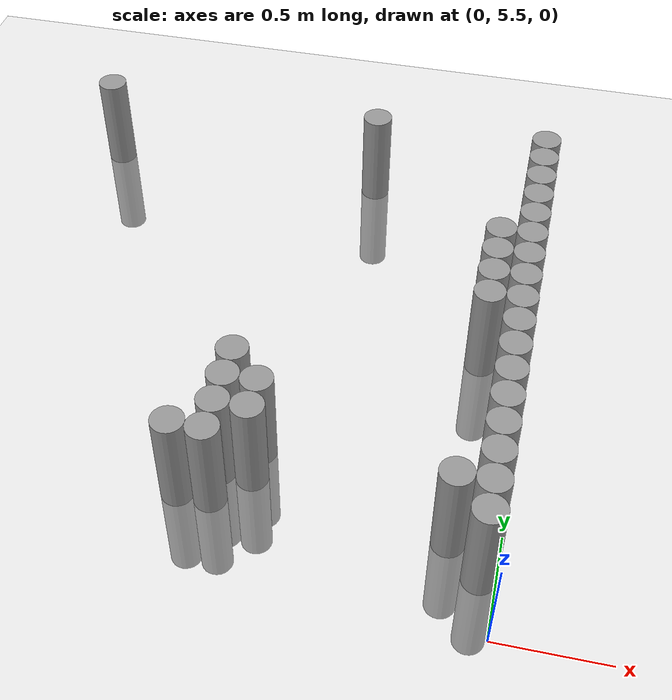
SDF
<sdf version="1.6">
 <world name="default">
  <model name="ground_plane">
   <static>1</static>
   <static>1</static>
   <link name="link">
    <collision name="collision">
     <geometry><plane><normal>0 0 1</normal><size>100 100</size></plane></geometry>
     <surface><friction><ode><mu>100</mu><mu2>50</mu2></ode></friction></surface>
    </collision>
    <visual name="visual">
     <cast_shadows>0</cast_shadows>
     <geometry><plane><normal>0 0 1</normal><size>100 100</size></plane></geometry>
     <material>
      <script><uri>file://media/materials/scripts/gazebo.material</uri><name>Gazebo/Grey</name></script>
     </material>
    </visual>
   </link>
  </model>
  <model name="unit_cylinder_168">
   <static>1</static>
   <pose>-2.475000 8.175000 0.000000 0.000000 0.000000 0.000000</pose>
   <link name="link">
    <inertial>
     <mass>1</mass>
     <inertia><ixx>0.145833</ixx><ixy>0</ixy><ixz>0</ixz><iyy>0.145833</iyy><iyz>0</iyz><izz>0.125</izz></inertia>
    </inertial>
    <collision name="collision">
     <geometry><cylinder><radius>0.075000</radius><length>1</length></cylinder></geometry>
    </collision>
    <visual name="visual">
     <geometry><cylinder><radius>0.075000</radius><length>1</length></cylinder></geometry>
     <material>
      <script><name>Gazebo/Grey</name><uri>file://media/materials/scripts/gazebo.material</uri></script>
     </material>
    </visual>
   </link>
  </model>
  <model name="unit_cylinder_187">
   <static>1</static>
   <pose>-1.425000 5.925000 0.000000 0.000000 0.000000 0.000000</pose>
   <link name="link">
    <inertial>
     <mass>1</mass>
     <inertia><ixx>0.145833</ixx><ixy>0</ixy><ixz>0</ixz><iyy>0.145833</iyy><iyz>0</iyz><izz>0.125</izz></inertia>
    </inertial>
    <collision name="collision">
     <geometry><cylinder><radius>0.075000</radius><length>1</length></cylinder></geometry>
    </collision>
    <visual name="visual">
     <geometry><cylinder><radius>0.075000</radius><length>1</length></cylinder></geometry>
     <material>
      <script><name>Gazebo/Grey</name><uri>file://media/materials/scripts/gazebo.material</uri></script>
     </material>
    </visual>
   </link>
  </model>
  <model name="unit_cylinder_188">
   <static>1</static>
   <pose>-1.275000 5.925000 0.000000 0.000000 0.000000 0.000000</pose>
   <link name="link">
    <inertial>
     <mass>1</mass>
     <inertia><ixx>0.145833</ixx><ixy>0</ixy><ixz>0</ixz><iyy>0.145833</iyy><iyz>0</iyz><izz>0.125</izz></inertia>
    </inertial>
    <collision name="collision">
     <geometry><cylinder><radius>0.075000</radius><length>1</length></cylinder></geometry>
    </collision>
    <visual name="visual">
     <geometry><cylinder><radius>0.075000</radius><length>1</length></cylinder></geometry>
     <material>
      <script><name>Gazebo/Grey</name><uri>file://media/materials/scripts/gazebo.material</uri></script>
     </material>
    </visual>
   </link>
  </model>
  <model name="unit_cylinder_189">
   <static>1</static>
   <pose>-1.275000 6.075000 0.000000 0.000000 0.000000 0.000000</pose>
   <link name="link">
    <inertial>
     <mass>1</mass>
     <inertia><ixx>0.145833</ixx><ixy>0</ixy><ixz>0</ixz><iyy>0.145833</iyy><iyz>0</iyz><izz>0.125</izz></inertia>
    </inertial>
    <collision name="collision">
     <geometry><cylinder><radius>0.075000</radius><length>1</length></cylinder></geometry>
    </collision>
    <visual name="visual">
     <geometry><cylinder><radius>0.075000</radius><length>1</length></cylinder></geometry>
     <material>
      <script><name>Gazebo/Grey</name><uri>file://media/materials/scripts/gazebo.material</uri></script>
     </material>
    </visual>
   </link>
  </model>
  <model name="unit_cylinder_190">
   <static>1</static>
   <pose>-1.275000 6.225000 0.000000 0.000000 0.000000 0.000000</pose>
   <link name="link">
    <inertial>
     <mass>1</mass>
     <inertia><ixx>0.145833</ixx><ixy>0</ixy><ixz>0</ixz><iyy>0.145833</iyy><iyz>0</iyz><izz>0.125</izz></inertia>
    </inertial>
    <collision name="collision">
     <geometry><cylinder><radius>0.075000</radius><length>1</length></cylinder></geometry>
    </collision>
    <visual name="visual">
     <geometry><cylinder><radius>0.075000</radius><length>1</length></cylinder></geometry>
     <material>
      <script><name>Gazebo/Grey</name><uri>file://media/materials/scripts/gazebo.material</uri></script>
     </material>
    </visual>
   </link>
  </model>
  <model name="unit_cylinder_191">
   <static>1</static>
   <pose>-1.275000 6.375000 0.000000 0.000000 0.000000 0.000000</pose>
   <link name="link">
    <inertial>
     <mass>1</mass>
     <inertia><ixx>0.145833</ixx><ixy>0</ixy><ixz>0</ixz><iyy>0.145833</iyy><iyz>0</iyz><izz>0.125</izz></inertia>
    </inertial>
    <collision name="collision">
     <geometry><cylinder><radius>0.075000</radius><length>1</length></cylinder></geometry>
    </collision>
    <visual name="visual">
     <geometry><cylinder><radius>0.075000</radius><length>1</length></cylinder></geometry>
     <material>
      <script><name>Gazebo/Grey</name><uri>file://media/materials/scripts/gazebo.material</uri></script>
     </material>
    </visual>
   </link>
  </model>
  <model name="unit_cylinder_193">
   <static>1</static>
   <pose>-1.125000 6.075000 0.000000 0.000000 0.000000 0.000000</pose>
   <link name="link">
    <inertial>
     <mass>1</mass>
     <inertia><ixx>0.145833</ixx><ixy>0</ixy><ixz>0</ixz><iyy>0.145833</iyy><iyz>0</iyz><izz>0.125</izz></inertia>
    </inertial>
    <collision name="collision">
     <geometry><cylinder><radius>0.075000</radius><length>1</length></cylinder></geometry>
    </collision>
    <visual name="visual">
     <geometry><cylinder><radius>0.075000</radius><length>1</length></cylinder></geometry>
     <material>
      <script><name>Gazebo/Grey</name><uri>file://media/materials/scripts/gazebo.material</uri></script>
     </material>
    </visual>
   </link>
  </model>
  <model name="unit_cylinder_194">
   <static>1</static>
   <pose>-1.125000 6.225000 0.000000 0.000000 0.000000 0.000000</pose>
   <link name="link">
    <inertial>
     <mass>1</mass>
     <inertia><ixx>0.145833</ixx><ixy>0</ixy><ixz>0</ixz><iyy>0.145833</iyy><iyz>0</iyz><izz>0.125</izz></inertia>
    </inertial>
    <collision name="collision">
     <geometry><cylinder><radius>0.075000</radius><length>1</length></cylinder></geometry>
    </collision>
    <visual name="visual">
     <geometry><cylinder><radius>0.075000</radius><length>1</length></cylinder></geometry>
     <material>
      <script><name>Gazebo/Grey</name><uri>file://media/materials/scripts/gazebo.material</uri></script>
     </material>
    </visual>
   </link>
  </model>
  <model name="unit_cylinder_197">
   <static>1</static>
   <pose>-0.975000 8.175000 0.000000 0.000000 0.000000 0.000000</pose>
   <link name="link">
    <inertial>
     <mass>1</mass>
     <inertia><ixx>0.145833</ixx><ixy>0</ixy><ixz>0</ixz><iyy>0.145833</iyy><iyz>0</iyz><izz>0.125</izz></inertia>
    </inertial>
    <collision name="collision">
     <geometry><cylinder><radius>0.075000</radius><length>1</length></cylinder></geometry>
    </collision>
    <visual name="visual">
     <geometry><cylinder><radius>0.075000</radius><length>1</length></cylinder></geometry>
     <material>
      <script><name>Gazebo/Grey</name><uri>file://media/materials/scripts/gazebo.material</uri></script>
     </material>
    </visual>
   </link>
  </model>
  <model name="unit_cylinder_208">
   <static>1</static>
   <pose>-0.225000 5.925000 0.000000 0.000000 0.000000 0.000000</pose>
   <link name="link">
    <inertial>
     <mass>1</mass>
     <inertia><ixx>0.145833</ixx><ixy>0</ixy><ixz>0</ixz><iyy>0.145833</iyy><iyz>0</iyz><izz>0.125</izz></inertia>
    </inertial>
    <collision name="collision">
     <geometry><cylinder><radius>0.075000</radius><length>1</length></cylinder></geometry>
    </collision>
    <visual name="visual">
     <geometry><cylinder><radius>0.075000</radius><length>1</length></cylinder></geometry>
     <material>
      <script><name>Gazebo/Grey</name><uri>file://media/materials/scripts/gazebo.material</uri></script>
     </material>
    </visual>
   </link>
  </model>
  <model name="unit_cylinder_209">
   <static>1</static>
   <pose>-0.225000 6.975000 0.000000 0.000000 0.000000 0.000000</pose>
   <link name="link">
    <inertial>
     <mass>1</mass>
     <inertia><ixx>0.145833</ixx><ixy>0</ixy><ixz>0</ixz><iyy>0.145833</iyy><iyz>0</iyz><izz>0.125</izz></inertia>
    </inertial>
    <collision name="collision">
     <geometry><cylinder><radius>0.075000</radius><length>1</length></cylinder></geometry>
    </collision>
    <visual name="visual">
     <geometry><cylinder><radius>0.075000</radius><length>1</length></cylinder></geometry>
     <material>
      <script><name>Gazebo/Grey</name><uri>file://media/materials/scripts/gazebo.material</uri></script>
     </material>
    </visual>
   </link>
  </model>
  <model name="unit_cylinder_210">
   <static>1</static>
   <pose>-0.225000 7.125000 0.000000 0.000000 0.000000 0.000000</pose>
   <link name="link">
    <inertial>
     <mass>1</mass>
     <inertia><ixx>0.145833</ixx><ixy>0</ixy><ixz>0</ixz><iyy>0.145833</iyy><iyz>0</iyz><izz>0.125</izz></inertia>
    </inertial>
    <collision name="collision">
     <geometry><cylinder><radius>0.075000</radius><length>1</length></cylinder></geometry>
    </collision>
    <visual name="visual">
     <geometry><cylinder><radius>0.075000</radius><length>1</length></cylinder></geometry>
     <material>
      <script><name>Gazebo/Grey</name><uri>file://media/materials/scripts/gazebo.material</uri></script>
     </material>
    </visual>
   </link>
  </model>
  <model name="unit_cylinder_211">
   <static>1</static>
   <pose>-0.225000 7.275000 0.000000 0.000000 0.000000 0.000000</pose>
   <link name="link">
    <inertial>
     <mass>1</mass>
     <inertia><ixx>0.145833</ixx><ixy>0</ixy><ixz>0</ixz><iyy>0.145833</iyy><iyz>0</iyz><izz>0.125</izz></inertia>
    </inertial>
    <collision name="collision">
     <geometry><cylinder><radius>0.075000</radius><length>1</length></cylinder></geometry>
    </collision>
    <visual name="visual">
     <geometry><cylinder><radius>0.075000</radius><length>1</length></cylinder></geometry>
     <material>
      <script><name>Gazebo/Grey</name><uri>file://media/materials/scripts/gazebo.material</uri></script>
     </material>
    </visual>
   </link>
  </model>
  <model name="unit_cylinder_212">
   <static>1</static>
   <pose>-0.225000 7.425000 0.000000 0.000000 0.000000 0.000000</pose>
   <link name="link">
    <inertial>
     <mass>1</mass>
     <inertia><ixx>0.145833</ixx><ixy>0</ixy><ixz>0</ixz><iyy>0.145833</iyy><iyz>0</iyz><izz>0.125</izz></inertia>
    </inertial>
    <collision name="collision">
     <geometry><cylinder><radius>0.075000</radius><length>1</length></cylinder></geometry>
    </collision>
    <visual name="visual">
     <geometry><cylinder><radius>0.075000</radius><length>1</length></cylinder></geometry>
     <material>
      <script><name>Gazebo/Grey</name><uri>file://media/materials/scripts/gazebo.material</uri></script>
     </material>
    </visual>
   </link>
  </model>
  <model name="unit_cylinder_222">
   <static>1</static>
   <pose>-0.075000 5.775000 0.000000 0.000000 0.000000 0.000000</pose>
   <link name="link">
    <inertial>
     <mass>1</mass>
     <inertia><ixx>0.145833</ixx><ixy>0</ixy><ixz>0</ixz><iyy>0.145833</iyy><iyz>0</iyz><izz>0.125</izz></inertia>
    </inertial>
    <collision name="collision">
     <geometry><cylinder><radius>0.075000</radius><length>1</length></cylinder></geometry>
    </collision>
    <visual name="visual">
     <geometry><cylinder><radius>0.075000</radius><length>1</length></cylinder></geometry>
     <material>
      <script><name>Gazebo/Grey</name><uri>file://media/materials/scripts/gazebo.material</uri></script>
     </material>
    </visual>
   </link>
  </model>
  <model name="unit_cylinder_223">
   <static>1</static>
   <pose>-0.075000 5.925000 0.000000 0.000000 0.000000 0.000000</pose>
   <link name="link">
    <inertial>
     <mass>1</mass>
     <inertia><ixx>0.145833</ixx><ixy>0</ixy><ixz>0</ixz><iyy>0.145833</iyy><iyz>0</iyz><izz>0.125</izz></inertia>
    </inertial>
    <collision name="collision">
     <geometry><cylinder><radius>0.075000</radius><length>1</length></cylinder></geometry>
    </collision>
    <visual name="visual">
     <geometry><cylinder><radius>0.075000</radius><length>1</length></cylinder></geometry>
     <material>
      <script><name>Gazebo/Grey</name><uri>file://media/materials/scripts/gazebo.material</uri></script>
     </material>
    </visual>
   </link>
  </model>
  <model name="unit_cylinder_224">
   <static>1</static>
   <pose>-0.075000 6.075000 0.000000 0.000000 0.000000 0.000000</pose>
   <link name="link">
    <inertial>
     <mass>1</mass>
     <inertia><ixx>0.145833</ixx><ixy>0</ixy><ixz>0</ixz><iyy>0.145833</iyy><iyz>0</iyz><izz>0.125</izz></inertia>
    </inertial>
    <collision name="collision">
     <geometry><cylinder><radius>0.075000</radius><length>1</length></cylinder></geometry>
    </collision>
    <visual name="visual">
     <geometry><cylinder><radius>0.075000</radius><length>1</length></cylinder></geometry>
     <material>
      <script><name>Gazebo/Grey</name><uri>file://media/materials/scripts/gazebo.material</uri></script>
     </material>
    </visual>
   </link>
  </model>
  <model name="unit_cylinder_225">
   <static>1</static>
   <pose>-0.075000 6.225000 0.000000 0.000000 0.000000 0.000000</pose>
   <link name="link">
    <inertial>
     <mass>1</mass>
     <inertia><ixx>0.145833</ixx><ixy>0</ixy><ixz>0</ixz><iyy>0.145833</iyy><iyz>0</iyz><izz>0.125</izz></inertia>
    </inertial>
    <collision name="collision">
     <geometry><cylinder><radius>0.075000</radius><length>1</length></cylinder></geometry>
    </collision>
    <visual name="visual">
     <geometry><cylinder><radius>0.075000</radius><length>1</length></cylinder></geometry>
     <material>
      <script><name>Gazebo/Grey</name><uri>file://media/materials/scripts/gazebo.material</uri></script>
     </material>
    </visual>
   </link>
  </model>
  <model name="unit_cylinder_226">
   <static>1</static>
   <pose>-0.075000 6.375000 0.000000 0.000000 0.000000 0.000000</pose>
   <link name="link">
    <inertial>
     <mass>1</mass>
     <inertia><ixx>0.145833</ixx><ixy>0</ixy><ixz>0</ixz><iyy>0.145833</iyy><iyz>0</iyz><izz>0.125</izz></inertia>
    </inertial>
    <collision name="collision">
     <geometry><cylinder><radius>0.075000</radius><length>1</length></cylinder></geometry>
    </collision>
    <visual name="visual">
     <geometry><cylinder><radius>0.075000</radius><length>1</length></cylinder></geometry>
     <material>
      <script><name>Gazebo/Grey</name><uri>file://media/materials/scripts/gazebo.material</uri></script>
     </material>
    </visual>
   </link>
  </model>
  <model name="unit_cylinder_227">
   <static>1</static>
   <pose>-0.075000 6.525000 0.000000 0.000000 0.000000 0.000000</pose>
   <link name="link">
    <inertial>
     <mass>1</mass>
     <inertia><ixx>0.145833</ixx><ixy>0</ixy><ixz>0</ixz><iyy>0.145833</iyy><iyz>0</iyz><izz>0.125</izz></inertia>
    </inertial>
    <collision name="collision">
     <geometry><cylinder><radius>0.075000</radius><length>1</length></cylinder></geometry>
    </collision>
    <visual name="visual">
     <geometry><cylinder><radius>0.075000</radius><length>1</length></cylinder></geometry>
     <material>
      <script><name>Gazebo/Grey</name><uri>file://media/materials/scripts/gazebo.material</uri></script>
     </material>
    </visual>
   </link>
  </model>
  <model name="unit_cylinder_228">
   <static>1</static>
   <pose>-0.075000 6.675000 0.000000 0.000000 0.000000 0.000000</pose>
   <link name="link">
    <inertial>
     <mass>1</mass>
     <inertia><ixx>0.145833</ixx><ixy>0</ixy><ixz>0</ixz><iyy>0.145833</iyy><iyz>0</iyz><izz>0.125</izz></inertia>
    </inertial>
    <collision name="collision">
     <geometry><cylinder><radius>0.075000</radius><length>1</length></cylinder></geometry>
    </collision>
    <visual name="visual">
     <geometry><cylinder><radius>0.075000</radius><length>1</length></cylinder></geometry>
     <material>
      <script><name>Gazebo/Grey</name><uri>file://media/materials/scripts/gazebo.material</uri></script>
     </material>
    </visual>
   </link>
  </model>
  <model name="unit_cylinder_229">
   <static>1</static>
   <pose>-0.075000 6.825000 0.000000 0.000000 0.000000 0.000000</pose>
   <link name="link">
    <inertial>
     <mass>1</mass>
     <inertia><ixx>0.145833</ixx><ixy>0</ixy><ixz>0</ixz><iyy>0.145833</iyy><iyz>0</iyz><izz>0.125</izz></inertia>
    </inertial>
    <collision name="collision">
     <geometry><cylinder><radius>0.075000</radius><length>1</length></cylinder></geometry>
    </collision>
    <visual name="visual">
     <geometry><cylinder><radius>0.075000</radius><length>1</length></cylinder></geometry>
     <material>
      <script><name>Gazebo/Grey</name><uri>file://media/materials/scripts/gazebo.material</uri></script>
     </material>
    </visual>
   </link>
  </model>
  <model name="unit_cylinder_230">
   <static>1</static>
   <pose>-0.075000 6.975000 0.000000 0.000000 0.000000 0.000000</pose>
   <link name="link">
    <inertial>
     <mass>1</mass>
     <inertia><ixx>0.145833</ixx><ixy>0</ixy><ixz>0</ixz><iyy>0.145833</iyy><iyz>0</iyz><izz>0.125</izz></inertia>
    </inertial>
    <collision name="collision">
     <geometry><cylinder><radius>0.075000</radius><length>1</length></cylinder></geometry>
    </collision>
    <visual name="visual">
     <geometry><cylinder><radius>0.075000</radius><length>1</length></cylinder></geometry>
     <material>
      <script><name>Gazebo/Grey</name><uri>file://media/materials/scripts/gazebo.material</uri></script>
     </material>
    </visual>
   </link>
  </model>
  <model name="unit_cylinder_231">
   <static>1</static>
   <pose>-0.075000 7.125000 0.000000 0.000000 0.000000 0.000000</pose>
   <link name="link">
    <inertial>
     <mass>1</mass>
     <inertia><ixx>0.145833</ixx><ixy>0</ixy><ixz>0</ixz><iyy>0.145833</iyy><iyz>0</iyz><izz>0.125</izz></inertia>
    </inertial>
    <collision name="collision">
     <geometry><cylinder><radius>0.075000</radius><length>1</length></cylinder></geometry>
    </collision>
    <visual name="visual">
     <geometry><cylinder><radius>0.075000</radius><length>1</length></cylinder></geometry>
     <material>
      <script><name>Gazebo/Grey</name><uri>file://media/materials/scripts/gazebo.material</uri></script>
     </material>
    </visual>
   </link>
  </model>
  <model name="unit_cylinder_232">
   <static>1</static>
   <pose>-0.075000 7.275000 0.000000 0.000000 0.000000 0.000000</pose>
   <link name="link">
    <inertial>
     <mass>1</mass>
     <inertia><ixx>0.145833</ixx><ixy>0</ixy><ixz>0</ixz><iyy>0.145833</iyy><iyz>0</iyz><izz>0.125</izz></inertia>
    </inertial>
    <collision name="collision">
     <geometry><cylinder><radius>0.075000</radius><length>1</length></cylinder></geometry>
    </collision>
    <visual name="visual">
     <geometry><cylinder><radius>0.075000</radius><length>1</length></cylinder></geometry>
     <material>
      <script><name>Gazebo/Grey</name><uri>file://media/materials/scripts/gazebo.material</uri></script>
     </material>
    </visual>
   </link>
  </model>
  <model name="unit_cylinder_233">
   <static>1</static>
   <pose>-0.075000 7.425000 0.000000 0.000000 0.000000 0.000000</pose>
   <link name="link">
    <inertial>
     <mass>1</mass>
     <inertia><ixx>0.145833</ixx><ixy>0</ixy><ixz>0</ixz><iyy>0.145833</iyy><iyz>0</iyz><izz>0.125</izz></inertia>
    </inertial>
    <collision name="collision">
     <geometry><cylinder><radius>0.075000</radius><length>1</length></cylinder></geometry>
    </collision>
    <visual name="visual">
     <geometry><cylinder><radius>0.075000</radius><length>1</length></cylinder></geometry>
     <material>
      <script><name>Gazebo/Grey</name><uri>file://media/materials/scripts/gazebo.material</uri></script>
     </material>
    </visual>
   </link>
  </model>
  <model name="unit_cylinder_234">
   <static>1</static>
   <pose>-0.075000 7.575000 0.000000 0.000000 0.000000 0.000000</pose>
   <link name="link">
    <inertial>
     <mass>1</mass>
     <inertia><ixx>0.145833</ixx><ixy>0</ixy><ixz>0</ixz><iyy>0.145833</iyy><iyz>0</iyz><izz>0.125</izz></inertia>
    </inertial>
    <collision name="collision">
     <geometry><cylinder><radius>0.075000</radius><length>1</length></cylinder></geometry>
    </collision>
    <visual name="visual">
     <geometry><cylinder><radius>0.075000</radius><length>1</length></cylinder></geometry>
     <material>
      <script><name>Gazebo/Grey</name><uri>file://media/materials/scripts/gazebo.material</uri></script>
     </material>
    </visual>
   </link>
  </model>
  <model name="unit_cylinder_235">
   <static>1</static>
   <pose>-0.075000 7.725000 0.000000 0.000000 0.000000 0.000000</pose>
   <link name="link">
    <inertial>
     <mass>1</mass>
     <inertia><ixx>0.145833</ixx><ixy>0</ixy><ixz>0</ixz><iyy>0.145833</iyy><iyz>0</iyz><izz>0.125</izz></inertia>
    </inertial>
    <collision name="collision">
     <geometry><cylinder><radius>0.075000</radius><length>1</length></cylinder></geometry>
    </collision>
    <visual name="visual">
     <geometry><cylinder><radius>0.075000</radius><length>1</length></cylinder></geometry>
     <material>
      <script><name>Gazebo/Grey</name><uri>file://media/materials/scripts/gazebo.material</uri></script>
     </material>
    </visual>
   </link>
  </model>
  <model name="unit_cylinder_236">
   <static>1</static>
   <pose>-0.075000 7.875000 0.000000 0.000000 0.000000 0.000000</pose>
   <link name="link">
    <inertial>
     <mass>1</mass>
     <inertia><ixx>0.145833</ixx><ixy>0</ixy><ixz>0</ixz><iyy>0.145833</iyy><iyz>0</iyz><izz>0.125</izz></inertia>
    </inertial>
    <collision name="collision">
     <geometry><cylinder><radius>0.075000</radius><length>1</length></cylinder></geometry>
    </collision>
    <visual name="visual">
     <geometry><cylinder><radius>0.075000</radius><length>1</length></cylinder></geometry>
     <material>
      <script><name>Gazebo/Grey</name><uri>file://media/materials/scripts/gazebo.material</uri></script>
     </material>
    </visual>
   </link>
  </model>
  <model name="unit_cylinder_237">
   <static>1</static>
   <pose>-0.075000 8.025000 0.000000 0.000000 0.000000 0.000000</pose>
   <link name="link">
    <inertial>
     <mass>1</mass>
     <inertia><ixx>0.145833</ixx><ixy>0</ixy><ixz>0</ixz><iyy>0.145833</iyy><iyz>0</iyz><izz>0.125</izz></inertia>
    </inertial>
    <collision name="collision">
     <geometry><cylinder><radius>0.075000</radius><length>1</length></cylinder></geometry>
    </collision>
    <visual name="visual">
     <geometry><cylinder><radius>0.075000</radius><length>1</length></cylinder></geometry>
     <material>
      <script><name>Gazebo/Grey</name><uri>file://media/materials/scripts/gazebo.material</uri></script>
     </material>
    </visual>
   </link>
  </model>
  <model name="unit_cylinder_238">
   <static>1</static>
   <pose>-0.075000 8.175000 0.000000 0.000000 0.000000 0.000000</pose>
   <link name="link">
    <inertial>
     <mass>1</mass>
     <inertia><ixx>0.145833</ixx><ixy>0</ixy><ixz>0</ixz><iyy>0.145833</iyy><iyz>0</iyz><izz>0.125</izz></inertia>
    </inertial>
    <collision name="collision">
     <geometry><cylinder><radius>0.075000</radius><length>1</length></cylinder></geometry>
    </collision>
    <visual name="visual">
     <geometry><cylinder><radius>0.075000</radius><length>1</length></cylinder></geometry>
     <material>
      <script><name>Gazebo/Grey</name><uri>file://media/materials/scripts/gazebo.material</uri></script>
     </material>
    </visual>
   </link>
  </model>
 </world>
</sdf>
